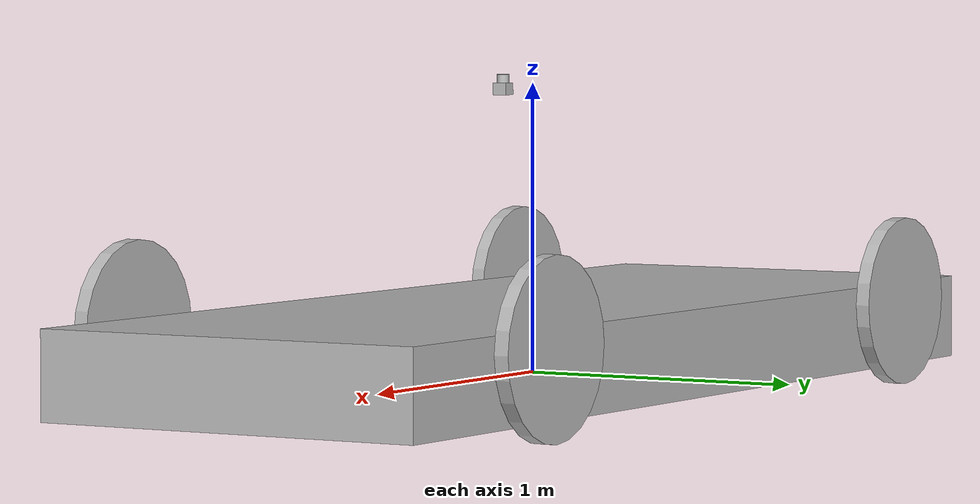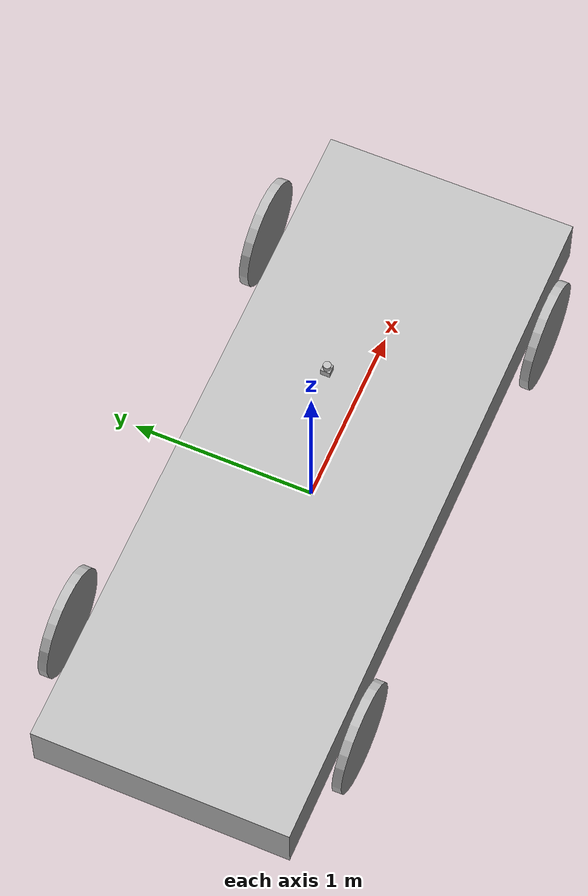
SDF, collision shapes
<?xml version='1.0'?>
<sdf version='1.4'>

  <model name="basic_car">
    <static>false</static>
    <link name='chassis'>

        <pose>0 0 .1 0 0 0</pose>

        <visual name='visual'>
          <pose>0 0 0.45 0 0 -1.5708</pose>
          <geometry>
            <mesh>
              <uri>model://car_019/meshes/car_019.dae</uri>
              <scale>1 1 1</scale>
            </mesh>
          </geometry>
        </visual>

        <collision name='collision'>
          <geometry>
            <box>
              <size>3.8 1.4 0.3</size>
            </box>
          </geometry>
        </collision>

    </link>

    <link name="left_wheel">
        <pose>1.25 0.8 0.2 0 1.5707 1.5707</pose>
        <collision name="collision">
          <geometry>
            <cylinder>
              <radius>.3</radius>
              <length>.05</length>
            </cylinder>
          </geometry>
        </collision>
        <visual name="visual">
          <geometry>
            <cylinder>
              <radius>.3</radius>
              <length>.05</length>
            </cylinder>
          </geometry>
        </visual>
    </link>
    <link name="right_wheel">
        <pose>1.25 -0.8 0.2 0 1.5707 1.5707</pose>
        <collision name="collision">
          <geometry>
            <cylinder>
              <radius>.3</radius>
              <length>.05</length>
            </cylinder>
          </geometry>
        </collision>
        <visual name="visual">
          <geometry>
            <cylinder>
              <radius>.3</radius>
              <length>.05</length>
            </cylinder>
          </geometry>
        </visual>

  </link>
    <link name="rear_left_wheel">
        <pose>-1.25 0.8 0.2 0 1.5707 1.5707</pose>
        <collision name="collision">
          <geometry>
            <cylinder>
              <radius>.3</radius>
              <length>.05</length>
            </cylinder>
          </geometry>
        </collision>
        <visual name="visual">
          <geometry>
            <cylinder>
              <radius>.3</radius>
              <length>.05</length>
            </cylinder>
          </geometry>
        </visual>
    </link>
    <link name="rear_right_wheel">
        <pose>-1.25 -0.8 0.2 0 1.5707 1.5707</pose>
        <collision name="collision">
          <geometry>
            <cylinder>
              <radius>.3</radius>
              <length>.05</length>
            </cylinder>
          </geometry>
        </collision>
        <visual name="visual">
          <geometry>
            <cylinder>
              <radius>.3</radius>
              <length>.05</length>
            </cylinder>
          </geometry>
        </visual>
  </link>

    <joint type="revolute" name="left_wheel_hinge">
        <pose>0 0 -0.03 0 0 0</pose>
        <child>left_wheel</child>
        <parent>chassis</parent>
        <axis>
            <xyz>0 1 0</xyz>
        </axis>
    </joint>

    <joint type="revolute" name="right_wheel_hinge">
        <pose>0 0 0.03 0 0 0</pose>
        <child>right_wheel</child>
        <parent>chassis</parent>
        <axis>
            <xyz>0 1 0</xyz>
        </axis>
    </joint>

    <joint type="revolute" name="rear_left_wheel_hinge">
        <pose>0 0 -0.03 0 0 0</pose>
        <child>rear_left_wheel</child>
        <parent>chassis</parent>
        <axis>
            <xyz>0 1 0</xyz>
        </axis>
    </joint>

    <joint type="revolute" name="rear_right_wheel_hinge">
        <pose>0 0 0.03 0 0 0</pose>
        <child>rear_right_wheel</child>
        <parent>chassis</parent>
        <axis>
            <xyz>0 1 0</xyz>
        </axis>
    </joint>

    <link name="sensor">
      <sensor name="laser" type="ray">
        <pose>1 0 1 0 0 0</pose>
        <ray>
          <scan>
            <horizontal>
              <samples>180</samples>
              <resolution>1.000000</resolution>
              <min_angle>-2.268928</min_angle>
              <max_angle>2.268928</max_angle>
            </horizontal>
          </scan>
          <range>
            <min>0.080000</min>
            <max>10</max>
            <resolution>0.010000</resolution>
          </range>
        </ray>

        <plugin name='laser_controller' filename='libgazebo_ros_laser.so'>
          <gaussianNoise>0.005</gaussianNoise>
          <alwaysOn>1</alwaysOn>
          <updateRate>20</updateRate>
          <topicName>scan</topicName>
          <frameName>laser</frameName>
        </plugin>
        <update_rate>20</update_rate>
      </sensor>
      </link>

  <include>
    <uri>model://hokuyo</uri>
    <pose>0.2 0 1 0 0 0</pose>
  </include>
  <joint name="hokuyo_joint" type="fixed">
    <child>hokuyo::link</child>
    <parent>chassis</parent>
  </joint>

  </model>
</sdf>

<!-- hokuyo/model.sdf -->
<sdf version="1.5">
  <model name="hokuyo">
    <pose>0 0 0.035 0 0 0</pose>
    <link name="link">
      <inertial>
        <mass>0.1</mass>
      </inertial>
      <visual name="visual">
        <geometry>
          <mesh>
            <uri>model://../model_source/models/hokuyo/meshes/hokuyo.dae</uri>
          </mesh>
        </geometry>
      </visual>
      <collision name="collision-base">
        <pose>0 0 -0.0145 0 0 0</pose>
        <geometry>
          <box>
            <size>0.05 0.05 0.041</size>
          </box>
        </geometry>
      </collision>
      <collision name="collision-top">
        <pose>0 0 0.0205 0 0 0</pose>
        <geometry>
          <cylinder>
            <radius>0.021</radius>
            <length>0.029</length>
          </cylinder>
        </geometry>
      </collision>
      <sensor name="laser" type="ray">
        <pose>0.01 0 0.0175 0 -0 0</pose>
        <ray>
          <scan>
            <horizontal>
              <samples>640</samples>
              <resolution>1</resolution>
              <min_angle>-2.26889</min_angle>
              <max_angle>2.268899</max_angle>
            </horizontal>
          </scan>
          <range>
            <min>0.08</min>
            <max>10</max>
            <resolution>0.01</resolution>
          </range>
        </ray>
        <plugin name="laser" filename="libRayPlugin.so" />
        <always_on>1</always_on>
        <update_rate>30</update_rate>
        <visualize>true</visualize>
      </sensor>
    </link>
  </model>
</sdf>
